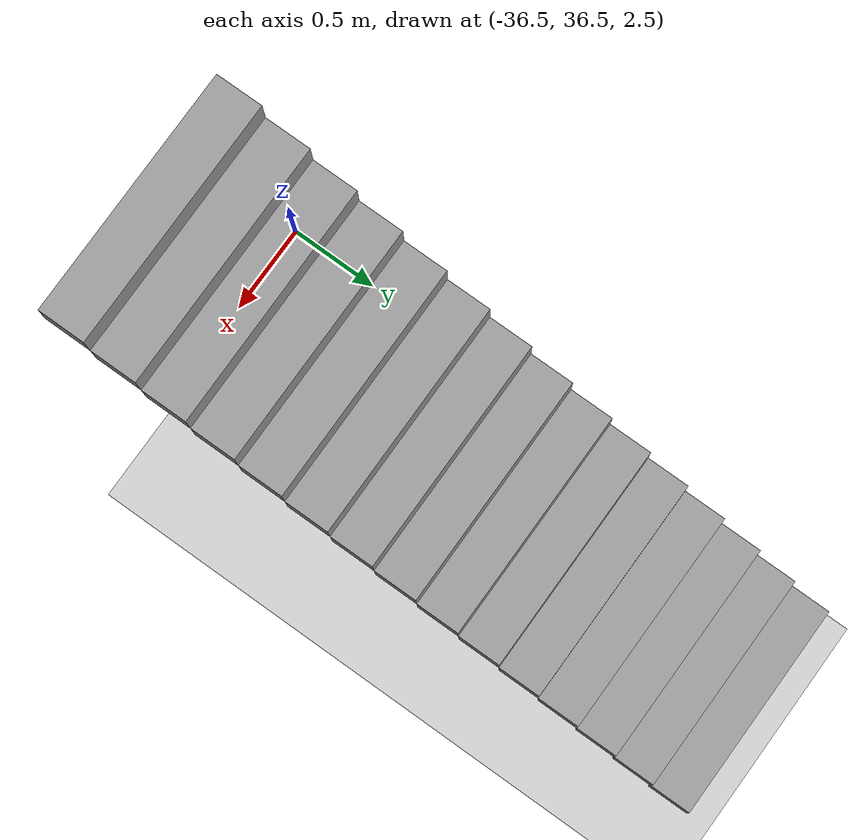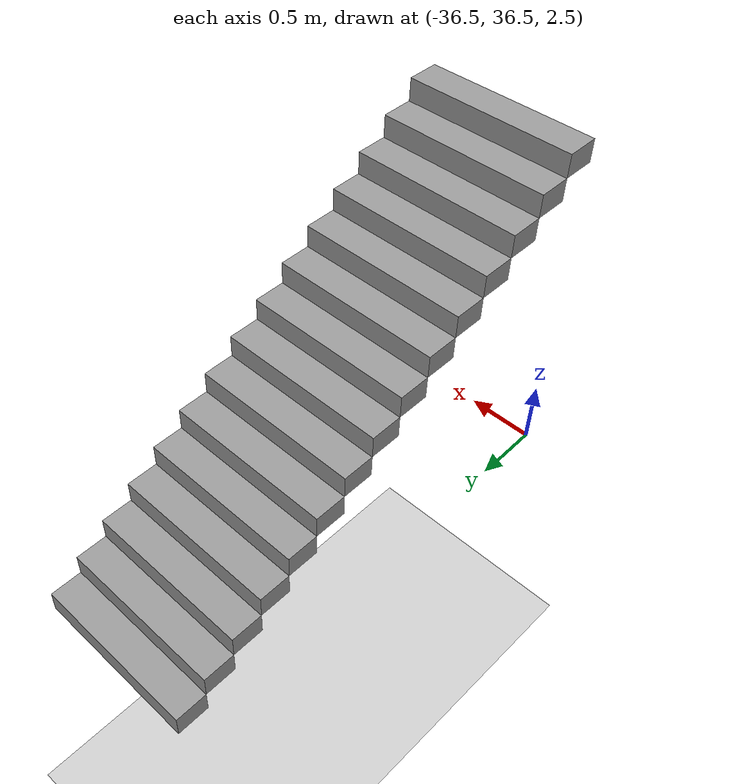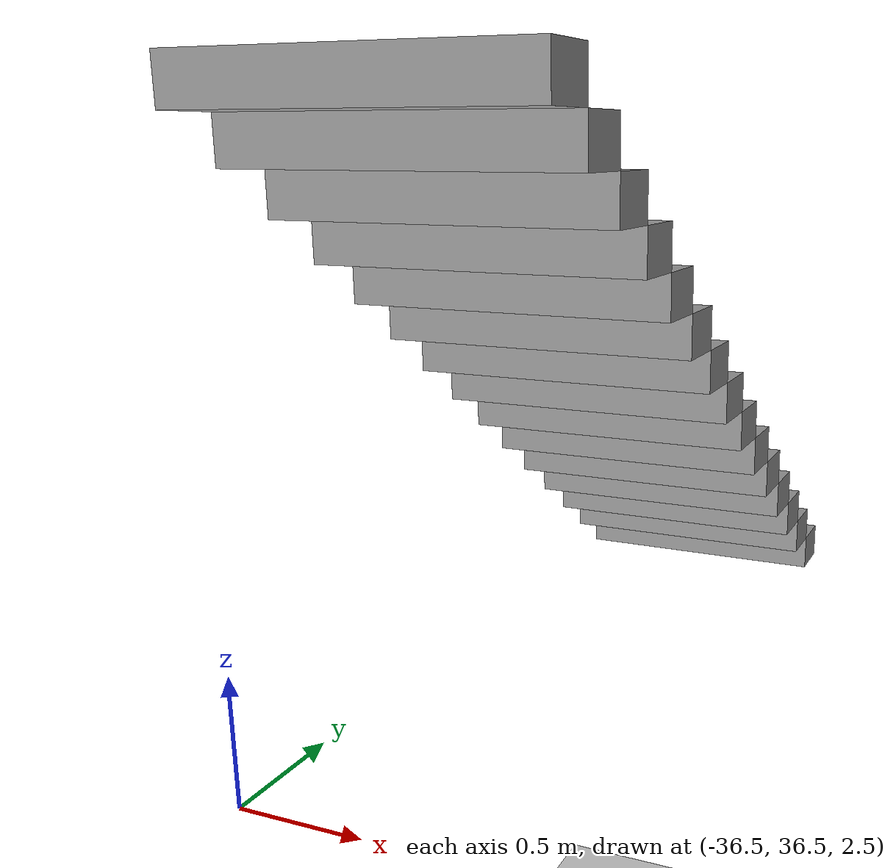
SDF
<sdf version="1.7">
 <world name="default">
  <model name="ground_plane">
   <static>1</static>
   <link name="link">
    <collision name="collision">
     <geometry><plane><normal>0 0 1</normal><size>100 100</size></plane></geometry>
     <surface><friction><ode><mu>100</mu><mu2>50</mu2></ode></friction></surface>
    </collision>
    <visual name="visual">
     <cast_shadows>0</cast_shadows>
     <geometry><plane><normal>0 0 1</normal><size>100 100</size></plane></geometry>
     <material>
      <script><uri>file://media/materials/scripts/gazebo.material</uri><name>Gazebo/Grey</name></script>
     </material>
    </visual>
   </link>
  </model>
  <model name="Anselm_Turmeda">
   <pose>-32.7988 -2.37459 0 0 -0 0</pose>
   <link name="Stairs_12">
    <visual name="Stairs_12_Visual_0">
     <pose>-3.0352 42.14 2.58333 0 -0 0</pose>
     <geometry><box><size>1.2352 0.234759 0.166667</size></box></geometry>
     <material>
      <script><uri>file://media/materials/scripts/gazebo.material</uri><name>Gazebo/Grey</name></script>
      <ambient>1 1 1 1</ambient>
     </material>
     <meta><layer>1</layer></meta>
    </visual>
    <collision name="Stairs_12_Collision_0">
     <geometry><box><size>1.2352 0.234759 0.166667</size></box></geometry>
     <pose>-3.0352 42.14 2.58333 0 -0 0</pose>
    </collision>
    <visual name="Stairs_12_Visual_1">
     <pose>-3.0352 41.9052 2.75 0 -0 0</pose>
     <geometry><box><size>1.2352 0.234759 0.166667</size></box></geometry>
     <material>
      <script><uri>file://media/materials/scripts/gazebo.material</uri><name>Gazebo/Grey</name></script>
      <ambient>1 1 1 1</ambient>
     </material>
     <meta><layer>1</layer></meta>
    </visual>
    <collision name="Stairs_12_Collision_1">
     <geometry><box><size>1.2352 0.234759 0.166667</size></box></geometry>
     <pose>-3.0352 41.9052 2.75 0 -0 0</pose>
    </collision>
    <visual name="Stairs_12_Visual_2">
     <pose>-3.0352 41.6705 2.91667 0 -0 0</pose>
     <geometry><box><size>1.2352 0.234759 0.166667</size></box></geometry>
     <material>
      <script><uri>file://media/materials/scripts/gazebo.material</uri><name>Gazebo/Grey</name></script>
      <ambient>1 1 1 1</ambient>
     </material>
     <meta><layer>1</layer></meta>
    </visual>
    <collision name="Stairs_12_Collision_2">
     <geometry><box><size>1.2352 0.234759 0.166667</size></box></geometry>
     <pose>-3.0352 41.6705 2.91667 0 -0 0</pose>
    </collision>
    <visual name="Stairs_12_Visual_3">
     <pose>-3.0352 41.4357 3.08333 0 -0 0</pose>
     <geometry><box><size>1.2352 0.234759 0.166667</size></box></geometry>
     <material>
      <script><uri>file://media/materials/scripts/gazebo.material</uri><name>Gazebo/Grey</name></script>
      <ambient>1 1 1 1</ambient>
     </material>
     <meta><layer>1</layer></meta>
    </visual>
    <collision name="Stairs_12_Collision_3">
     <geometry><box><size>1.2352 0.234759 0.166667</size></box></geometry>
     <pose>-3.0352 41.4357 3.08333 0 -0 0</pose>
    </collision>
    <visual name="Stairs_12_Visual_4">
     <pose>-3.0352 41.2009 3.25 0 -0 0</pose>
     <geometry><box><size>1.2352 0.234759 0.166667</size></box></geometry>
     <material>
      <script><uri>file://media/materials/scripts/gazebo.material</uri><name>Gazebo/Grey</name></script>
      <ambient>1 1 1 1</ambient>
     </material>
     <meta><layer>1</layer></meta>
    </visual>
    <collision name="Stairs_12_Collision_4">
     <geometry><box><size>1.2352 0.234759 0.166667</size></box></geometry>
     <pose>-3.0352 41.2009 3.25 0 -0 0</pose>
    </collision>
    <visual name="Stairs_12_Visual_5">
     <pose>-3.0352 40.9662 3.41667 0 -0 0</pose>
     <geometry><box><size>1.2352 0.234759 0.166667</size></box></geometry>
     <material>
      <script><uri>file://media/materials/scripts/gazebo.material</uri><name>Gazebo/Grey</name></script>
      <ambient>1 1 1 1</ambient>
     </material>
     <meta><layer>1</layer></meta>
    </visual>
    <collision name="Stairs_12_Collision_5">
     <geometry><box><size>1.2352 0.234759 0.166667</size></box></geometry>
     <pose>-3.0352 40.9662 3.41667 0 -0 0</pose>
    </collision>
    <visual name="Stairs_12_Visual_6">
     <pose>-3.0352 40.7314 3.58333 0 -0 0</pose>
     <geometry><box><size>1.2352 0.234759 0.166667</size></box></geometry>
     <material>
      <script><uri>file://media/materials/scripts/gazebo.material</uri><name>Gazebo/Grey</name></script>
      <ambient>1 1 1 1</ambient>
     </material>
     <meta><layer>1</layer></meta>
    </visual>
    <collision name="Stairs_12_Collision_6">
     <geometry><box><size>1.2352 0.234759 0.166667</size></box></geometry>
     <pose>-3.0352 40.7314 3.58333 0 -0 0</pose>
    </collision>
    <visual name="Stairs_12_Visual_7">
     <pose>-3.0352 40.4967 3.75 0 -0 0</pose>
     <geometry><box><size>1.2352 0.234759 0.166667</size></box></geometry>
     <material>
      <script><uri>file://media/materials/scripts/gazebo.material</uri><name>Gazebo/Grey</name></script>
      <ambient>1 1 1 1</ambient>
     </material>
     <meta><layer>1</layer></meta>
    </visual>
    <collision name="Stairs_12_Collision_7">
     <geometry><box><size>1.2352 0.234759 0.166667</size></box></geometry>
     <pose>-3.0352 40.4967 3.75 0 -0 0</pose>
    </collision>
    <visual name="Stairs_12_Visual_8">
     <pose>-3.0352 40.2619 3.91667 0 -0 0</pose>
     <geometry><box><size>1.2352 0.234759 0.166667</size></box></geometry>
     <material>
      <script><uri>file://media/materials/scripts/gazebo.material</uri><name>Gazebo/Grey</name></script>
      <ambient>1 1 1 1</ambient>
     </material>
     <meta><layer>1</layer></meta>
    </visual>
    <collision name="Stairs_12_Collision_8">
     <geometry><box><size>1.2352 0.234759 0.166667</size></box></geometry>
     <pose>-3.0352 40.2619 3.91667 0 -0 0</pose>
    </collision>
    <visual name="Stairs_12_Visual_9">
     <pose>-3.0352 40.0271 4.08333 0 -0 0</pose>
     <geometry><box><size>1.2352 0.234759 0.166667</size></box></geometry>
     <material>
      <script><uri>file://media/materials/scripts/gazebo.material</uri><name>Gazebo/Grey</name></script>
      <ambient>1 1 1 1</ambient>
     </material>
     <meta><layer>1</layer></meta>
    </visual>
    <collision name="Stairs_12_Collision_9">
     <geometry><box><size>1.2352 0.234759 0.166667</size></box></geometry>
     <pose>-3.0352 40.0271 4.08333 0 -0 0</pose>
    </collision>
    <visual name="Stairs_12_Visual_10">
     <pose>-3.0352 39.7924 4.25 0 -0 0</pose>
     <geometry><box><size>1.2352 0.234759 0.166667</size></box></geometry>
     <material>
      <script><uri>file://media/materials/scripts/gazebo.material</uri><name>Gazebo/Grey</name></script>
      <ambient>1 1 1 1</ambient>
     </material>
     <meta><layer>1</layer></meta>
    </visual>
    <collision name="Stairs_12_Collision_10">
     <geometry><box><size>1.2352 0.234759 0.166667</size></box></geometry>
     <pose>-3.0352 39.7924 4.25 0 -0 0</pose>
    </collision>
    <visual name="Stairs_12_Visual_11">
     <pose>-3.0352 39.5576 4.41667 0 -0 0</pose>
     <geometry><box><size>1.2352 0.234759 0.166667</size></box></geometry>
     <material>
      <script><uri>file://media/materials/scripts/gazebo.material</uri><name>Gazebo/Grey</name></script>
      <ambient>1 1 1 1</ambient>
     </material>
     <meta><layer>1</layer></meta>
    </visual>
    <collision name="Stairs_12_Collision_11">
     <geometry><box><size>1.2352 0.234759 0.166667</size></box></geometry>
     <pose>-3.0352 39.5576 4.41667 0 -0 0</pose>
    </collision>
    <visual name="Stairs_12_Visual_12">
     <pose>-3.0352 39.3229 4.58333 0 -0 0</pose>
     <geometry><box><size>1.2352 0.234759 0.166667</size></box></geometry>
     <material>
      <script><uri>file://media/materials/scripts/gazebo.material</uri><name>Gazebo/Grey</name></script>
      <ambient>1 1 1 1</ambient>
     </material>
     <meta><layer>1</layer></meta>
    </visual>
    <collision name="Stairs_12_Collision_12">
     <geometry><box><size>1.2352 0.234759 0.166667</size></box></geometry>
     <pose>-3.0352 39.3229 4.58333 0 -0 0</pose>
    </collision>
    <visual name="Stairs_12_Visual_13">
     <pose>-3.0352 39.0881 4.75 0 -0 0</pose>
     <geometry><box><size>1.2352 0.234759 0.166667</size></box></geometry>
     <material>
      <script><uri>file://media/materials/scripts/gazebo.material</uri><name>Gazebo/Grey</name></script>
      <ambient>1 1 1 1</ambient>
     </material>
     <meta><layer>1</layer></meta>
    </visual>
    <collision name="Stairs_12_Collision_13">
     <geometry><box><size>1.2352 0.234759 0.166667</size></box></geometry>
     <pose>-3.0352 39.0881 4.75 0 -0 0</pose>
    </collision>
    <visual name="Stairs_12_Visual_14">
     <pose>-3.0352 38.8533 4.91667 0 -0 0</pose>
     <geometry><box><size>1.2352 0.234759 0.166667</size></box></geometry>
     <material>
      <script><uri>file://media/materials/scripts/gazebo.material</uri><name>Gazebo/Grey</name></script>
      <ambient>1 1 1 1</ambient>
     </material>
     <meta><layer>1</layer></meta>
    </visual>
    <collision name="Stairs_12_Collision_14">
     <geometry><box><size>1.2352 0.234759 0.166667</size></box></geometry>
     <pose>-3.0352 38.8533 4.91667 0 -0 0</pose>
    </collision>
   </link>
   <static>1</static>
  </model>
 </world>
</sdf>
